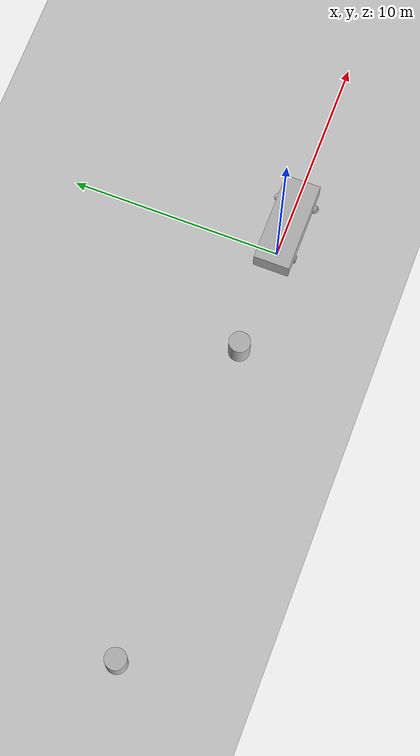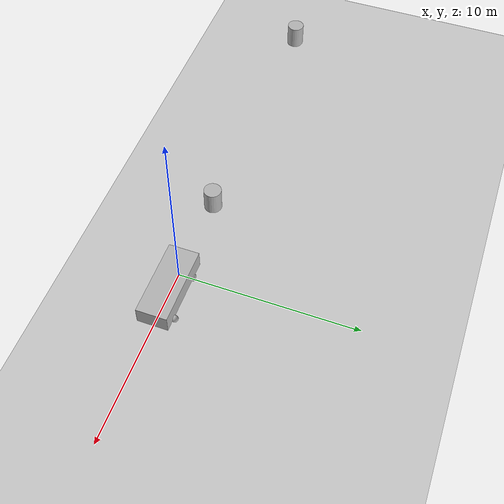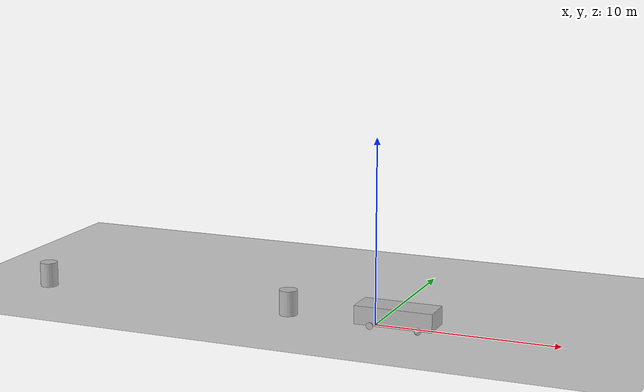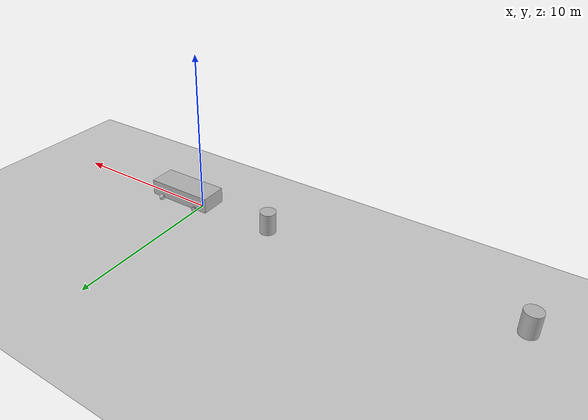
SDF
<?xml version="1.0"?>
<sdf version="1.4">
  <world name="default">
    <gui>
      <camera name="user_camera">
        <pose>-7.35 -3.59 39.73 0 1.417 0.124</pose>
      </camera>
    </gui>

    <include>
      <uri>model://ground_plane</uri>
    </include>

    <include>
      <uri>model://sun</uri>
    </include>

    <include>
      <name>lgp_obstacle_0</name>
      <pose>-20 0 0 0 0 3.1415</pose>
      <uri>model://lgp_obstacle</uri>
      <plugin name="lgp_obstacle" filename="liblgp_car_gazebo_plugin.so"/>
    </include>

    <include>
      <name>lgp_obstacle_1</name>
      <pose>-5 0 0 0 0 3.1415</pose>
      <uri>model://lgp_obstacle</uri>
      <plugin name="lgp_obstacle" filename="liblgp_car_gazebo_plugin.so"/>
    </include>

    <include>
      <name>lgp_car</name>
      <uri>model://lgp_car</uri>
      <plugin name="lgp_car" filename="liblgp_car_gazebo_plugin.so"/>
    </include>

    </world>
</sdf>

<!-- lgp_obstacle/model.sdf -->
<sdf version='1.4'>
  <model name="lgp_obstacle">
        <static>false</static>

	<link name='chassis'>
            <pose>0.0 0 0.69 0 0 0</pose>

	      <inertial>
		<mass>300.0</mass>
	      </inertial>

            <collision name='collision'>
              <geometry>
                <cylinder>
              	  <radius>0.5</radius>
              	  <length>1.39</length>
            	</cylinder>
              </geometry>

                  <surface>
		    <friction>
		      <ode>
		        <mu>1.0</mu>
		        <mu2>0</mu2>
		      </ode>
		    </friction>
		  </surface>

            </collision>

            <visual name='visual'>
              <geometry>
		<cylinder>
              	  <radius>0.5</radius>
              	  <length>1.39</length>
            	</cylinder>
              </geometry>
            </visual>
          </link>

  </model>
</sdf>

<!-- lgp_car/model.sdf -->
<sdf version='1.4'>
  <model name="lgp_car">
        <static>false</static>

	<link name='chassis'>
            <pose>1.25 0 0.69 0 0 0</pose>

	      <inertial>
		<mass>100.0</mass>
	      </inertial>

            <collision name='collision'>
              <geometry>
                <box>
                  <size>4.3 1.7 1.0</size>
                </box>
              </geometry>

                  <surface>
		    <friction>
		      <ode>
		        <mu>0</mu>
		        <mu2>0</mu2>
		      </ode>
		    </friction>
		  </surface>

            </collision>

            <visual name='visual'>
              <geometry>
                <box>
                  <size>4.3 1.7 1.0</size>
                </box>
              </geometry>
            </visual>

             <collision name='caster_collision_left'>
		  <pose>1.4 0.9 -0.5 0 0 0</pose>
		    <geometry>
		      <sphere>
		      <radius>.19</radius>
		    </sphere>
		  </geometry>

		  <surface>
		    <friction>
		      <ode>
		        <mu>0</mu>
		        <mu2>0</mu2>
		        <slip1>0.0</slip1>
		        <slip2>0.0</slip2>
		      </ode>
		    </friction>
		  </surface>
		</collision>

		<visual name='caster_visual_left'>
		  <pose>1.4 0.9 -0.5 0 0 0</pose>
		  <geometry>
		    <sphere>
		      <radius>.19</radius>
		    </sphere>
		  </geometry>
		</visual>

                <collision name='caster_collision_right'>
		  <pose>1.4 -0.9 -0.5 0 0 0</pose>
		    <geometry>
		      <sphere>
		      <radius>.19</radius>
		    </sphere>
		  </geometry>

		  <surface>
		    <friction>
		      <ode>
		        <mu>0</mu>
		        <mu2>0</mu2>
		        <slip1>0.0</slip1>
		        <slip2>0.0</slip2>
		      </ode>
		    </friction>
		  </surface>
		</collision>

		<visual name='caster_visual_right'>
		  <pose>1.4 -0.9 -0.5 0 0 0</pose>
		  <geometry>
		    <sphere>
		      <radius>.19</radius>
		    </sphere>
		  </geometry>
		</visual>
          </link>

	<link name="left_wheel">
        <pose>0.0 0.9 0.19 0 1.5707 1.5707</pose>
		<collision name="collision">

		  <geometry>
		    <cylinder>
		      <radius>.19</radius>
		      <length>.05</length>
		    </cylinder>
		  </geometry>

                  <surface>
		    <friction>
		      <ode>
		        <mu>1000.00</mu>
		        <mu2>1000.00</mu2>
		      </ode>
		    </friction>
		  </surface>

		</collision>
		<visual name="visual">
		  <geometry>
		    <cylinder>
		      <radius>.19</radius>
		      <length>.05</length>
		    </cylinder>
		  </geometry>
		</visual>
     	 </link>

	<link name="right_wheel">
        <pose>0.0 -0.9 0.19 0 1.5707 1.5707</pose>
		<collision name="collision">
		  <geometry>
		    <cylinder>
		      <radius>.19</radius>
		      <length>.05</length>
		    </cylinder>
		  </geometry>
                  <surface>
		    <friction>
		      <ode>
		        <mu>1000.0</mu>
		        <mu2>1000.0</mu2>
		      </ode>
		    </friction>
		  </surface>

		</collision>
		<visual name="visual">
		  <geometry>
		    <cylinder>
		      <radius>.19</radius>
		      <length>.05</length>
		    </cylinder>
		  </geometry>
		</visual>
     	 </link>

	<joint type="revolute" name="left_wheel_hinge">
          <pose>0 0 -0.03 0 0 0</pose>
          <child>left_wheel</child>
          <parent>chassis</parent>
          <axis>
          <xyz>0 1 0</xyz>
          </axis>
      	</joint>

      	<joint type="revolute" name="right_wheel_hinge">
          <pose>0 0 0.03 0 0 0</pose>
          <child>right_wheel</child>
          <parent>chassis</parent>
          <axis>
          <xyz>0 1 0</xyz>
          </axis>
      	</joint>

  </model>
</sdf>
